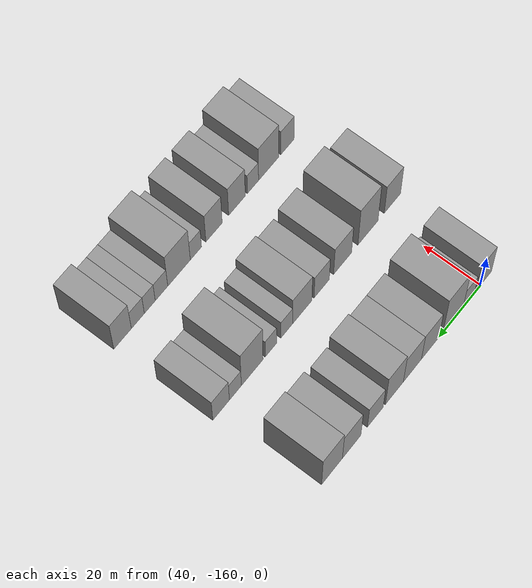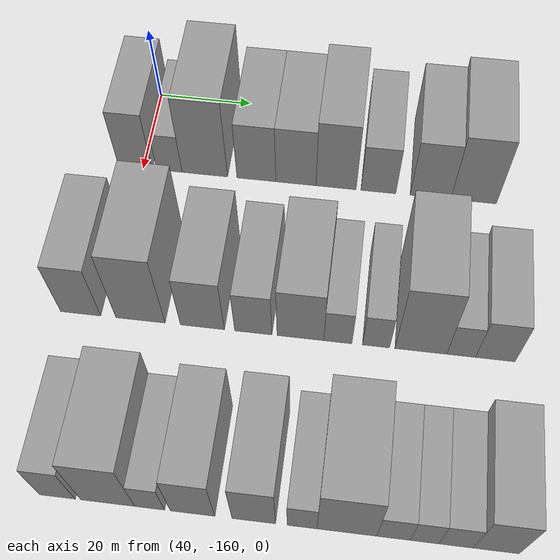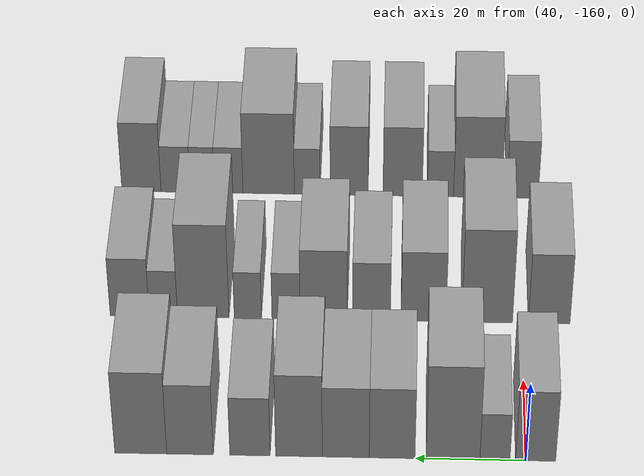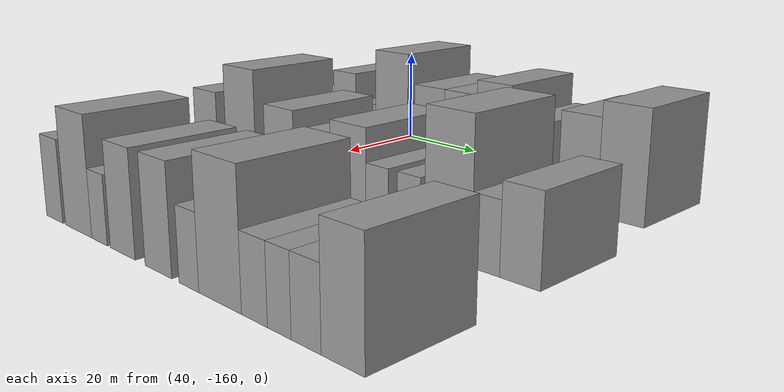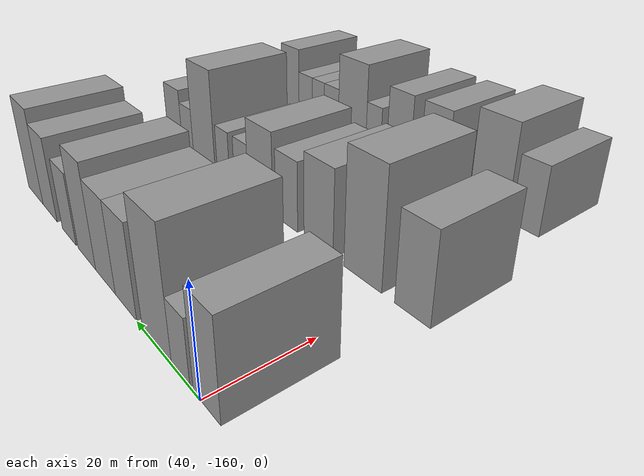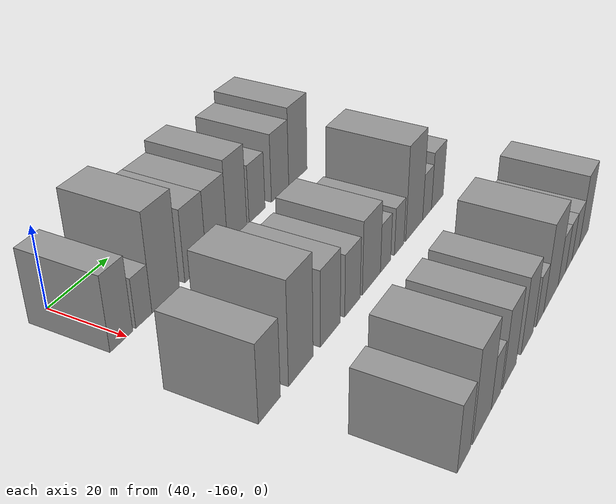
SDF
<sdf version="1.6">
 <world name="default">
  <model name="building_21">
   <static>1</static>
   <pose>50.0000 -161.7235 0 0.000000 0.000000 0.000000</pose>
   <link name="link">
    <pose>0 0 9.00 0 0 0</pose>
    <collision name="collision"><geometry><box><size>20.0000 7.2469 18.0000</size></box></geometry></collision>
    <visual name="visual">
     <cast_shadows>0</cast_shadows>
     <geometry><box><size>20.0000 7.2469 18.0000</size></box></geometry>
     <material>
      <script>
       <uri>model://grey_wall/materials/scripts</uri>
       <uri>model://grey_wall/materials/textures</uri>
       <name>vrc/grey_wall</name>
      </script>
     </material>
    </visual>
   </link>
  </model>
  <model name="building_22">
   <static>1</static>
   <pose>50.0000 -154.3871 0 0.000000 0.000000 0.000000</pose>
   <link name="link">
    <pose>0 0 6.00 0 0 0</pose>
    <collision name="collision"><geometry><box><size>20.0000 5.4259 12.0000</size></box></geometry></collision>
    <visual name="visual">
     <cast_shadows>0</cast_shadows>
     <geometry><box><size>20.0000 5.4259 12.0000</size></box></geometry>
     <material>
      <script>
       <uri>model://grey_wall/materials/scripts</uri>
       <uri>model://grey_wall/materials/textures</uri>
       <name>vrc/grey_wall</name>
      </script>
     </material>
    </visual>
   </link>
  </model>
  <model name="building_23">
   <static>1</static>
   <pose>50.0000 -146.8042 0 0.000000 0.000000 0.000000</pose>
   <link name="link">
    <pose>0 0 12.00 0 0 0</pose>
    <collision name="collision"><geometry><box><size>20.0000 9.7397 24.0000</size></box></geometry></collision>
    <visual name="visual">
     <cast_shadows>0</cast_shadows>
     <geometry><box><size>20.0000 9.7397 24.0000</size></box></geometry>
     <material>
      <script>
       <uri>model://grey_wall/materials/scripts</uri>
       <uri>model://grey_wall/materials/textures</uri>
       <name>vrc/grey_wall</name>
      </script>
     </material>
    </visual>
   </link>
  </model>
  <model name="building_24">
   <static>1</static>
   <pose>50.0000 -135.8123 0 0.000000 0.000000 0.000000</pose>
   <link name="link">
    <pose>0 0 9.00 0 0 0</pose>
    <collision name="collision"><geometry><box><size>20.0000 8.2442 18.0000</size></box></geometry></collision>
    <visual name="visual">
     <cast_shadows>0</cast_shadows>
     <geometry><box><size>20.0000 8.2442 18.0000</size></box></geometry>
     <material>
      <script>
       <uri>model://grey_wall/materials/scripts</uri>
       <uri>model://grey_wall/materials/textures</uri>
       <name>vrc/grey_wall</name>
      </script>
     </material>
    </visual>
   </link>
  </model>
  <model name="building_25">
   <static>1</static>
   <pose>50.0000 -127.4321 0 0.000000 0.000000 0.000000</pose>
   <link name="link">
    <pose>0 0 9.00 0 0 0</pose>
    <collision name="collision"><geometry><box><size>20.0000 8.5163 18.0000</size></box></geometry></collision>
    <visual name="visual">
     <cast_shadows>0</cast_shadows>
     <geometry><box><size>20.0000 8.5163 18.0000</size></box></geometry>
     <material>
      <script>
       <uri>model://grey_wall/materials/scripts</uri>
       <uri>model://grey_wall/materials/textures</uri>
       <name>vrc/grey_wall</name>
      </script>
     </material>
    </visual>
   </link>
  </model>
  <model name="building_26">
   <static>1</static>
   <pose>50.0000 -118.9645 0 0.000000 0.000000 0.000000</pose>
   <link name="link">
    <pose>0 0 10.50 0 0 0</pose>
    <collision name="collision"><geometry><box><size>20.0000 8.4188 21.0000</size></box></geometry></collision>
    <visual name="visual">
     <cast_shadows>0</cast_shadows>
     <geometry><box><size>20.0000 8.4188 21.0000</size></box></geometry>
     <material>
      <script>
       <uri>model://grey_wall/materials/scripts</uri>
       <uri>model://grey_wall/materials/textures</uri>
       <name>vrc/grey_wall</name>
      </script>
     </material>
    </visual>
   </link>
  </model>
  <model name="building_27">
   <static>1</static>
   <pose>50.0000 -110.1095 0 0.000000 0.000000 0.000000</pose>
   <link name="link">
    <pose>0 0 7.50 0 0 0</pose>
    <collision name="collision"><geometry><box><size>20.0000 7.2914 15.0000</size></box></geometry></collision>
    <visual name="visual">
     <cast_shadows>0</cast_shadows>
     <geometry><box><size>20.0000 7.2914 15.0000</size></box></geometry>
     <material>
      <script>
       <uri>model://grey_wall/materials/scripts</uri>
       <uri>model://grey_wall/materials/textures</uri>
       <name>vrc/grey_wall</name>
      </script>
     </material>
    </visual>
   </link>
  </model>
  <model name="building_28">
   <static>1</static>
   <pose>50.0000 -99.2491 0 0.000000 0.000000 0.000000</pose>
   <link name="link">
    <pose>0 0 9.00 0 0 0</pose>
    <collision name="collision"><geometry><box><size>20.0000 8.4293 18.0000</size></box></geometry></collision>
    <visual name="visual">
     <cast_shadows>0</cast_shadows>
     <geometry><box><size>20.0000 8.4293 18.0000</size></box></geometry>
     <material>
      <script>
       <uri>model://grey_wall/materials/scripts</uri>
       <uri>model://grey_wall/materials/textures</uri>
       <name>vrc/grey_wall</name>
      </script>
     </material>
    </visual>
   </link>
  </model>
  <model name="building_29">
   <static>1</static>
   <pose>50.0000 -90.3243 0 0.000000 0.000000 0.000000</pose>
   <link name="link">
    <pose>0 0 10.50 0 0 0</pose>
    <collision name="collision"><geometry><box><size>20.0000 9.4204 21.0000</size></box></geometry></collision>
    <visual name="visual">
     <cast_shadows>0</cast_shadows>
     <geometry><box><size>20.0000 9.4204 21.0000</size></box></geometry>
     <material>
      <script>
       <uri>model://grey_wall/materials/scripts</uri>
       <uri>model://grey_wall/materials/textures</uri>
       <name>vrc/grey_wall</name>
      </script>
     </material>
    </visual>
   </link>
  </model>
  <model name="building_100">
   <static>1</static>
   <pose>85.0000 -165.1414 0 0.000000 0.000000 0.000000</pose>
   <link name="link">
    <pose>0 0 9.00 0 0 0</pose>
    <collision name="collision"><geometry><box><size>20.0000 7.8794 18.0000</size></box></geometry></collision>
    <visual name="visual">
     <cast_shadows>0</cast_shadows>
     <geometry><box><size>20.0000 7.8794 18.0000</size></box></geometry>
     <material>
      <script>
       <uri>model://grey_wall/materials/scripts</uri>
       <uri>model://grey_wall/materials/textures</uri>
       <name>vrc/grey_wall</name>
      </script>
     </material>
    </visual>
   </link>
  </model>
  <model name="building_101">
   <static>1</static>
   <pose>85.0000 -153.3951 0 0.000000 0.000000 0.000000</pose>
   <link name="link">
    <pose>0 0 12.00 0 0 0</pose>
    <collision name="collision"><geometry><box><size>20.0000 9.6133 24.0000</size></box></geometry></collision>
    <visual name="visual">
     <cast_shadows>0</cast_shadows>
     <geometry><box><size>20.0000 9.6133 24.0000</size></box></geometry>
     <material>
      <script>
       <uri>model://grey_wall/materials/scripts</uri>
       <uri>model://grey_wall/materials/textures</uri>
       <name>vrc/grey_wall</name>
      </script>
     </material>
    </visual>
   </link>
  </model>
  <model name="building_102">
   <static>1</static>
   <pose>85.0000 -141.3218 0 0.000000 0.000000 0.000000</pose>
   <link name="link">
    <pose>0 0 9.00 0 0 0</pose>
    <collision name="collision"><geometry><box><size>20.0000 8.5334 18.0000</size></box></geometry></collision>
    <visual name="visual">
     <cast_shadows>0</cast_shadows>
     <geometry><box><size>20.0000 8.5334 18.0000</size></box></geometry>
     <material>
      <script>
       <uri>model://grey_wall/materials/scripts</uri>
       <uri>model://grey_wall/materials/textures</uri>
       <name>vrc/grey_wall</name>
      </script>
     </material>
    </visual>
   </link>
  </model>
  <model name="building_103">
   <static>1</static>
   <pose>85.0000 -131.4717 0 0.000000 0.000000 0.000000</pose>
   <link name="link">
    <pose>0 0 7.50 0 0 0</pose>
    <collision name="collision"><geometry><box><size>20.0000 7.1668 15.0000</size></box></geometry></collision>
    <visual name="visual">
     <cast_shadows>0</cast_shadows>
     <geometry><box><size>20.0000 7.1668 15.0000</size></box></geometry>
     <material>
      <script>
       <uri>model://grey_wall/materials/scripts</uri>
       <uri>model://grey_wall/materials/textures</uri>
       <name>vrc/grey_wall</name>
      </script>
     </material>
    </visual>
   </link>
  </model>
  <model name="building_104">
   <static>1</static>
   <pose>85.0000 -122.4098 0 0.000000 0.000000 0.000000</pose>
   <link name="link">
    <pose>0 0 9.00 0 0 0</pose>
    <collision name="collision"><geometry><box><size>20.0000 8.9569 18.0000</size></box></geometry></collision>
    <visual name="visual">
     <cast_shadows>0</cast_shadows>
     <geometry><box><size>20.0000 8.9569 18.0000</size></box></geometry>
     <material>
      <script>
       <uri>model://grey_wall/materials/scripts</uri>
       <uri>model://grey_wall/materials/textures</uri>
       <name>vrc/grey_wall</name>
      </script>
     </material>
    </visual>
   </link>
  </model>
  <model name="building_105">
   <static>1</static>
   <pose>85.0000 -115.2569 0 0.000000 0.000000 0.000000</pose>
   <link name="link">
    <pose>0 0 6.00 0 0 0</pose>
    <collision name="collision"><geometry><box><size>20.0000 5.3489 12.0000</size></box></geometry></collision>
    <visual name="visual">
     <cast_shadows>0</cast_shadows>
     <geometry><box><size>20.0000 5.3489 12.0000</size></box></geometry>
     <material>
      <script>
       <uri>model://grey_wall/materials/scripts</uri>
       <uri>model://grey_wall/materials/textures</uri>
       <name>vrc/grey_wall</name>
      </script>
     </material>
    </visual>
   </link>
  </model>
  <model name="building_106">
   <static>1</static>
   <pose>85.0000 -107.9996 0 0.000000 0.000000 0.000000</pose>
   <link name="link">
    <pose>0 0 6.00 0 0 0</pose>
    <collision name="collision"><geometry><box><size>20.0000 5.1656 12.0000</size></box></geometry></collision>
    <visual name="visual">
     <cast_shadows>0</cast_shadows>
     <geometry><box><size>20.0000 5.1656 12.0000</size></box></geometry>
     <material>
      <script>
       <uri>model://grey_wall/materials/scripts</uri>
       <uri>model://grey_wall/materials/textures</uri>
       <name>vrc/grey_wall</name>
      </script>
     </material>
    </visual>
   </link>
  </model>
  <model name="building_107">
   <static>1</static>
   <pose>85.0000 -99.5205 0 0.000000 0.000000 0.000000</pose>
   <link name="link">
    <pose>0 0 12.00 0 0 0</pose>
    <collision name="collision"><geometry><box><size>20.0000 9.7926 24.0000</size></box></geometry></collision>
    <visual name="visual">
     <cast_shadows>0</cast_shadows>
     <geometry><box><size>20.0000 9.7926 24.0000</size></box></geometry>
     <material>
      <script>
       <uri>model://grey_wall/materials/scripts</uri>
       <uri>model://grey_wall/materials/textures</uri>
       <name>vrc/grey_wall</name>
      </script>
     </material>
    </visual>
   </link>
  </model>
  <model name="building_108">
   <static>1</static>
   <pose>85.0000 -91.9292 0 0.000000 0.000000 0.000000</pose>
   <link name="link">
    <pose>0 0 6.00 0 0 0</pose>
    <collision name="collision"><geometry><box><size>20.0000 5.3900 12.0000</size></box></geometry></collision>
    <visual name="visual">
     <cast_shadows>0</cast_shadows>
     <geometry><box><size>20.0000 5.3900 12.0000</size></box></geometry>
     <material>
      <script>
       <uri>model://grey_wall/materials/scripts</uri>
       <uri>model://grey_wall/materials/textures</uri>
       <name>vrc/grey_wall</name>
      </script>
     </material>
    </visual>
   </link>
  </model>
  <model name="building_109">
   <static>1</static>
   <pose>85.0000 -85.5301 0 0.000000 0.000000 0.000000</pose>
   <link name="link">
    <pose>0 0 7.50 0 0 0</pose>
    <collision name="collision"><geometry><box><size>20.0000 7.4082 15.0000</size></box></geometry></collision>
    <visual name="visual">
     <cast_shadows>0</cast_shadows>
     <geometry><box><size>20.0000 7.4082 15.0000</size></box></geometry>
     <material>
      <script>
       <uri>model://grey_wall/materials/scripts</uri>
       <uri>model://grey_wall/materials/textures</uri>
       <name>vrc/grey_wall</name>
      </script>
     </material>
    </visual>
   </link>
  </model>
  <model name="building_182">
   <static>1</static>
   <pose>120.0000 -160.8313 0 0.000000 0.000000 0.000000</pose>
   <link name="link">
    <pose>0 0 7.50 0 0 0</pose>
    <collision name="collision"><geometry><box><size>20.0000 6.2709 15.0000</size></box></geometry></collision>
    <visual name="visual">
     <cast_shadows>0</cast_shadows>
     <geometry><box><size>20.0000 6.2709 15.0000</size></box></geometry>
     <material>
      <script>
       <uri>model://grey_wall/materials/scripts</uri>
       <uri>model://grey_wall/materials/textures</uri>
       <name>vrc/grey_wall</name>
      </script>
     </material>
    </visual>
   </link>
  </model>
  <model name="building_183">
   <static>1</static>
   <pose>120.0000 -151.9282 0 0.000000 0.000000 0.000000</pose>
   <link name="link">
    <pose>0 0 10.50 0 0 0</pose>
    <collision name="collision"><geometry><box><size>20.0000 9.5353 21.0000</size></box></geometry></collision>
    <visual name="visual">
     <cast_shadows>0</cast_shadows>
     <geometry><box><size>20.0000 9.5353 21.0000</size></box></geometry>
     <material>
      <script>
       <uri>model://grey_wall/materials/scripts</uri>
       <uri>model://grey_wall/materials/textures</uri>
       <name>vrc/grey_wall</name>
      </script>
     </material>
    </visual>
   </link>
  </model>
  <model name="building_184">
   <static>1</static>
   <pose>120.0000 -144.5488 0 0.000000 0.000000 0.000000</pose>
   <link name="link">
    <pose>0 0 6.00 0 0 0</pose>
    <collision name="collision"><geometry><box><size>20.0000 5.2235 12.0000</size></box></geometry></collision>
    <visual name="visual">
     <cast_shadows>0</cast_shadows>
     <geometry><box><size>20.0000 5.2235 12.0000</size></box></geometry>
     <material>
      <script>
       <uri>model://grey_wall/materials/scripts</uri>
       <uri>model://grey_wall/materials/textures</uri>
       <name>vrc/grey_wall</name>
      </script>
     </material>
    </visual>
   </link>
  </model>
  <model name="building_185">
   <static>1</static>
   <pose>120.0000 -137.0495 0 0.000000 0.000000 0.000000</pose>
   <link name="link">
    <pose>0 0 9.00 0 0 0</pose>
    <collision name="collision"><geometry><box><size>20.0000 7.7749 18.0000</size></box></geometry></collision>
    <visual name="visual">
     <cast_shadows>0</cast_shadows>
     <geometry><box><size>20.0000 7.7749 18.0000</size></box></geometry>
     <material>
      <script>
       <uri>model://grey_wall/materials/scripts</uri>
       <uri>model://grey_wall/materials/textures</uri>
       <name>vrc/grey_wall</name>
      </script>
     </material>
    </visual>
   </link>
  </model>
  <model name="building_186">
   <static>1</static>
   <pose>120.0000 -126.4019 0 0.000000 0.000000 0.000000</pose>
   <link name="link">
    <pose>0 0 9.00 0 0 0</pose>
    <collision name="collision"><geometry><box><size>20.0000 7.5203 18.0000</size></box></geometry></collision>
    <visual name="visual">
     <cast_shadows>0</cast_shadows>
     <geometry><box><size>20.0000 7.5203 18.0000</size></box></geometry>
     <material>
      <script>
       <uri>model://grey_wall/materials/scripts</uri>
       <uri>model://grey_wall/materials/textures</uri>
       <name>vrc/grey_wall</name>
      </script>
     </material>
    </visual>
   </link>
  </model>
  <model name="building_187">
   <static>1</static>
   <pose>120.0000 -118.0832 0 0.000000 0.000000 0.000000</pose>
   <link name="link">
    <pose>0 0 6.00 0 0 0</pose>
    <collision name="collision"><geometry><box><size>20.0000 5.1172 12.0000</size></box></geometry></collision>
    <visual name="visual">
     <cast_shadows>0</cast_shadows>
     <geometry><box><size>20.0000 5.1172 12.0000</size></box></geometry>
     <material>
      <script>
       <uri>model://grey_wall/materials/scripts</uri>
       <uri>model://grey_wall/materials/textures</uri>
       <name>vrc/grey_wall</name>
      </script>
     </material>
    </visual>
   </link>
  </model>
  <model name="building_188">
   <static>1</static>
   <pose>120.0000 -110.4106 0 0.000000 0.000000 0.000000</pose>
   <link name="link">
    <pose>0 0 10.50 0 0 0</pose>
    <collision name="collision"><geometry><box><size>20.0000 10.2279 21.0000</size></box></geometry></collision>
    <visual name="visual">
     <cast_shadows>0</cast_shadows>
     <geometry><box><size>20.0000 10.2279 21.0000</size></box></geometry>
     <material>
      <script>
       <uri>model://grey_wall/materials/scripts</uri>
       <uri>model://grey_wall/materials/textures</uri>
       <name>vrc/grey_wall</name>
      </script>
     </material>
    </visual>
   </link>
  </model>
  <model name="building_189">
   <static>1</static>
   <pose>120.0000 -102.4725 0 0.000000 0.000000 0.000000</pose>
   <link name="link">
    <pose>0 0 6.00 0 0 0</pose>
    <collision name="collision"><geometry><box><size>20.0000 5.6483 12.0000</size></box></geometry></collision>
    <visual name="visual">
     <cast_shadows>0</cast_shadows>
     <geometry><box><size>20.0000 5.6483 12.0000</size></box></geometry>
     <material>
      <script>
       <uri>model://grey_wall/materials/scripts</uri>
       <uri>model://grey_wall/materials/textures</uri>
       <name>vrc/grey_wall</name>
      </script>
     </material>
    </visual>
   </link>
  </model>
  <model name="building_190">
   <static>1</static>
   <pose>120.0000 -97.2037 0 0.000000 0.000000 0.000000</pose>
   <link name="link">
    <pose>0 0 6.00 0 0 0</pose>
    <collision name="collision"><geometry><box><size>20.0000 4.8894 12.0000</size></box></geometry></collision>
    <visual name="visual">
     <cast_shadows>0</cast_shadows>
     <geometry><box><size>20.0000 4.8894 12.0000</size></box></geometry>
     <material>
      <script>
       <uri>model://grey_wall/materials/scripts</uri>
       <uri>model://grey_wall/materials/textures</uri>
       <name>vrc/grey_wall</name>
      </script>
     </material>
    </visual>
   </link>
  </model>
  <model name="building_191">
   <static>1</static>
   <pose>120.0000 -91.8717 0 0.000000 0.000000 0.000000</pose>
   <link name="link">
    <pose>0 0 6.00 0 0 0</pose>
    <collision name="collision"><geometry><box><size>20.0000 5.7746 12.0000</size></box></geometry></collision>
    <visual name="visual">
     <cast_shadows>0</cast_shadows>
     <geometry><box><size>20.0000 5.7746 12.0000</size></box></geometry>
     <material>
      <script>
       <uri>model://grey_wall/materials/scripts</uri>
       <uri>model://grey_wall/materials/textures</uri>
       <name>vrc/grey_wall</name>
      </script>
     </material>
    </visual>
   </link>
  </model>
  <model name="building_192">
   <static>1</static>
   <pose>120.0000 -85.0903 0 0.000000 0.000000 0.000000</pose>
   <link name="link">
    <pose>0 0 9.00 0 0 0</pose>
    <collision name="collision"><geometry><box><size>20.0000 7.7881 18.0000</size></box></geometry></collision>
    <visual name="visual">
     <cast_shadows>0</cast_shadows>
     <geometry><box><size>20.0000 7.7881 18.0000</size></box></geometry>
     <material>
      <script>
       <uri>model://grey_wall/materials/scripts</uri>
       <uri>model://grey_wall/materials/textures</uri>
       <name>vrc/grey_wall</name>
      </script>
     </material>
    </visual>
   </link>
  </model>
 </world>
</sdf>
